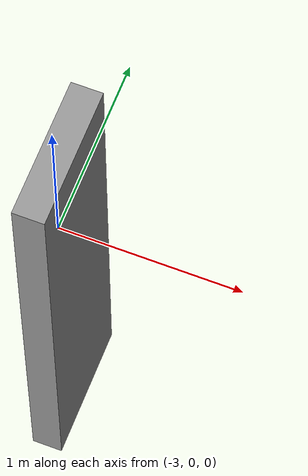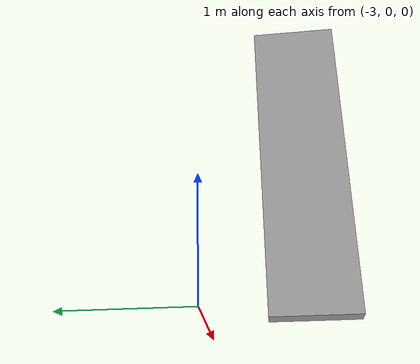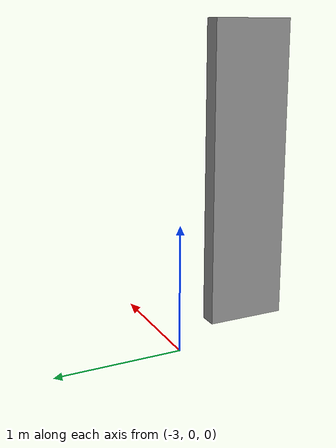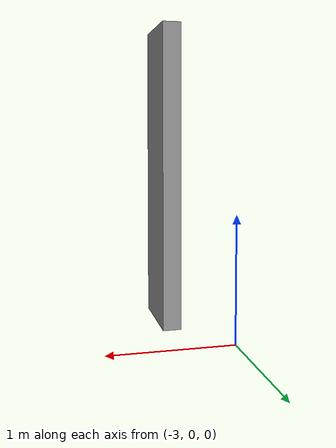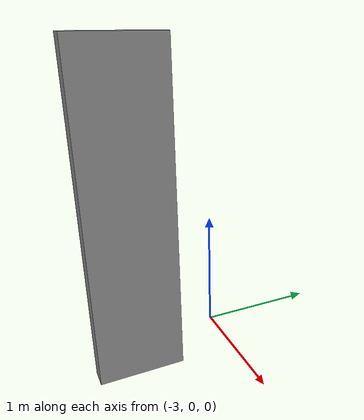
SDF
<?xml version='1.0'?>
<sdf version='1.6'>
  <model name='wall_03'>
    <pose frame=''>-2.60376 -0.790134 0 0 -0 0</pose>
    <link name='Wall_0'>
      <collision name='Wall_0_Collision'>
        <geometry>
          <box>
            <size>0.668 0.15 2.5</size>
          </box>
        </geometry>
        <pose frame=''>0 0 1.25 0 -0 0</pose>
      </collision>
      <visual name='Wall_0_Visual'>
        <pose frame=''>0 0 1.25 0 -0 0</pose>
        <geometry>
          <box>
            <size>0.668 0.15 2.5</size>
          </box>
        </geometry>
        <material>
          <script>
            <uri>file://media/materials/scripts/gazebo.material</uri>
            <name>Gazebo/Grey</name>
          </script>
          <ambient>1 1 1 1</ambient>
        </material>
        <meta>
          <layer>0</layer>
        </meta>
      </visual>
      <pose frame=''>0 0 0 0 -0 1.5708</pose>
    </link>
    <static>1</static>
  </model>
</sdf>
